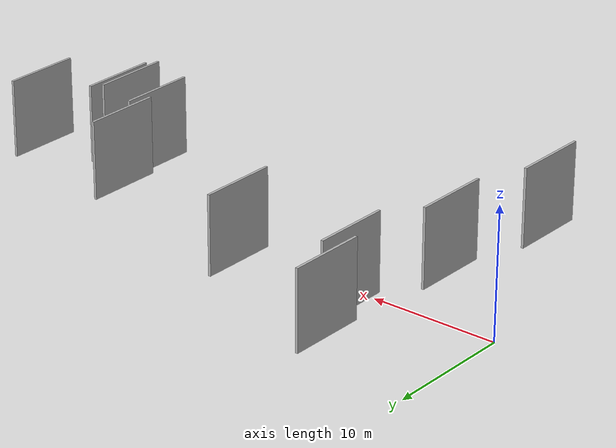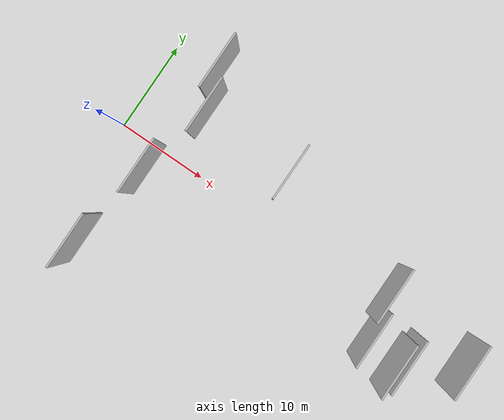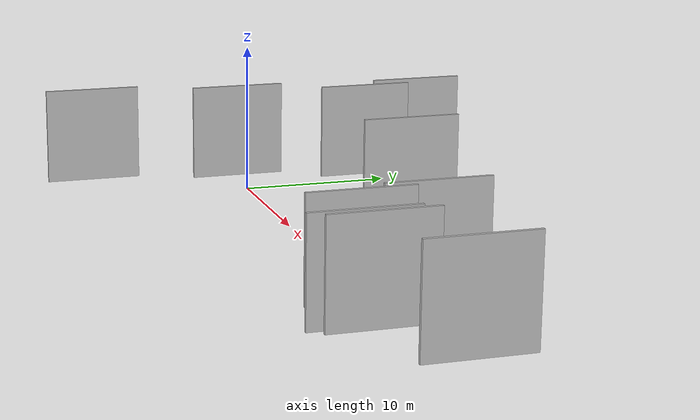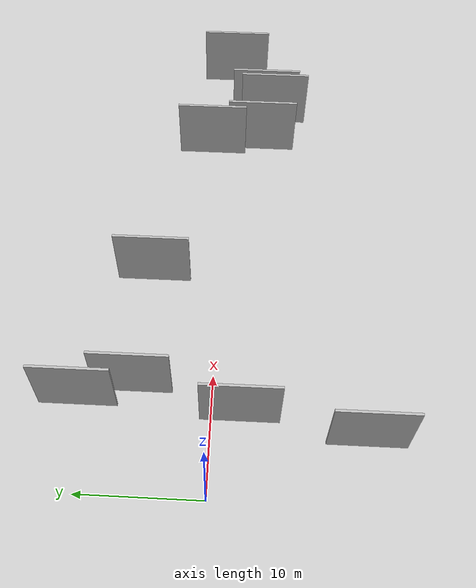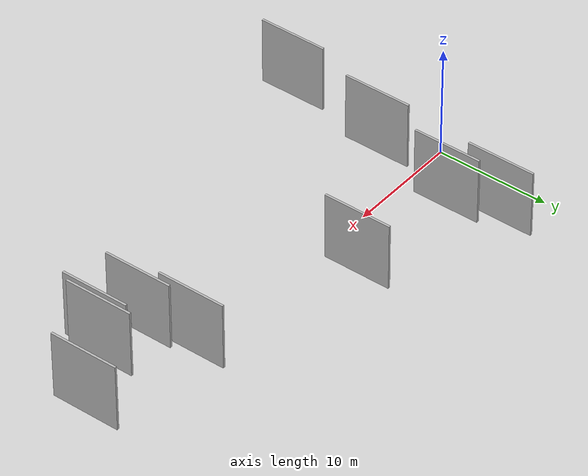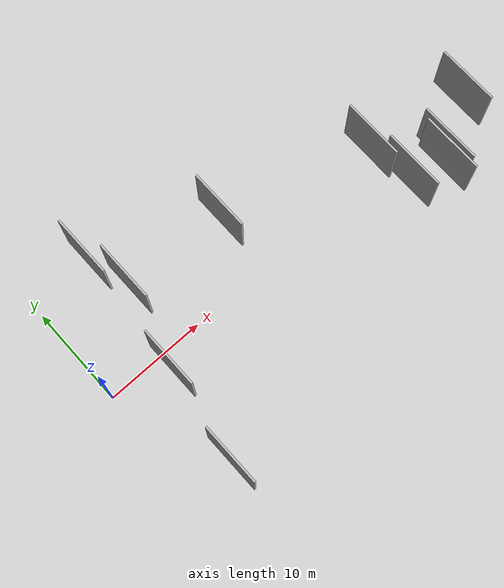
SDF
<sdf version="1.6">
 <world name="default">
  <scene>
   <sky><clouds><speed>12</speed></clouds></sky>
   <ambient>0.4 0.4 0.4 1</ambient>
   <background>0.7 0.7 0.7 1</background>
   <shadows>1</shadows>
  </scene>
  <gravity>0 0 -9.8066</gravity>
  <magnetic_field>6e-06 2.3e-05 -4.2e-05</magnetic_field>
  <physics default="0" name="default_physics" type="ode">
   <ode>
    <solver>
     <type>quick</type>
     <iters>10</iters>
     <sor>1.0</sor>
     <use_dynamic_moi_rescaling>0</use_dynamic_moi_rescaling>
    </solver>
    <constraints>
     <cfm>0</cfm>
     <erp>0.2</erp>
     <contact_max_correcting_vel>100</contact_max_correcting_vel>
     <contact_surface_layer>0.001</contact_surface_layer>
    </constraints>
   </ode>
   <max_step_size>0.004</max_step_size>
   <real_time_factor>1</real_time_factor>
   <real_time_update_rate>250</real_time_update_rate>
  </physics>
  <light name="sun" type="directional">
   <pose>0 0 10 0 0 0</pose>
   <diffuse>0.8 0.8 0.8 1</diffuse>
   <specular>0.2 0.2 0.2 1</specular>
   <attenuation>
    <range>1000</range>
    <constant>0.9</constant>
    <linear>0.01</linear>
    <quadratic>0.001</quadratic>
   </attenuation>
   <direction>-0.5 0.1 -0.9</direction>
  </light>
  <model name="grey_wall_1">
   <static>1</static>
   <pose>31.9623 1.1963 2.5 0.000000 0.000000 1.570796</pose>
   <link name="link">
    <pose>0 0 3.00 0 0 0</pose>
    <collision name="collision"><geometry><box><size>6.00 0.2 6.00</size></box></geometry></collision>
    <visual name="visual">
     <cast_shadows>0</cast_shadows>
     <geometry><box><size>6.00 0.2 6.00</size></box></geometry>
     <material>
      <script>
       <uri>model://HANNAS_wall/materials/scripts</uri>
       <uri>model://HANNAS_wall/materials/textures</uri>
       <name>vrc/HANNAS_wall</name>
      </script>
     </material>
    </visual>
   </link>
  </model>
  <model name="grey_wall_2">
   <static>1</static>
   <pose>36.1941 -4.3274 2.5 0.000000 0.000000 1.570796</pose>
   <link name="link">
    <pose>0 0 3.00 0 0 0</pose>
    <collision name="collision"><geometry><box><size>6.00 0.2 6.00</size></box></geometry></collision>
    <visual name="visual">
     <cast_shadows>0</cast_shadows>
     <geometry><box><size>6.00 0.2 6.00</size></box></geometry>
     <material>
      <script>
       <uri>model://HANNAS_wall/materials/scripts</uri>
       <uri>model://HANNAS_wall/materials/textures</uri>
       <name>vrc/HANNAS_wall</name>
      </script>
     </material>
    </visual>
   </link>
  </model>
  <model name="grey_wall_3">
   <static>1</static>
   <pose>32.6400 -3.2439 2.5 0.000000 0.000000 1.570796</pose>
   <link name="link">
    <pose>0 0 3.00 0 0 0</pose>
    <collision name="collision"><geometry><box><size>6.00 0.2 6.00</size></box></geometry></collision>
    <visual name="visual">
     <cast_shadows>0</cast_shadows>
     <geometry><box><size>6.00 0.2 6.00</size></box></geometry>
     <material>
      <script>
       <uri>model://HANNAS_wall/materials/scripts</uri>
       <uri>model://HANNAS_wall/materials/textures</uri>
       <name>vrc/HANNAS_wall</name>
      </script>
     </material>
    </visual>
   </link>
  </model>
  <model name="grey_wall_4">
   <static>1</static>
   <pose>6.1502 10.0293 2.5 0.000000 0.000000 1.570796</pose>
   <link name="link">
    <pose>0 0 3.00 0 0 0</pose>
    <collision name="collision"><geometry><box><size>6.00 0.2 6.00</size></box></geometry></collision>
    <visual name="visual">
     <cast_shadows>0</cast_shadows>
     <geometry><box><size>6.00 0.2 6.00</size></box></geometry>
     <material>
      <script>
       <uri>model://HANNAS_wall/materials/scripts</uri>
       <uri>model://HANNAS_wall/materials/textures</uri>
       <name>vrc/HANNAS_wall</name>
      </script>
     </material>
    </visual>
   </link>
  </model>
  <model name="grey_wall_5">
   <static>1</static>
   <pose>7.4186 5.9627 2.5 0.000000 0.000000 1.570796</pose>
   <link name="link">
    <pose>0 0 3.00 0 0 0</pose>
    <collision name="collision"><geometry><box><size>6.00 0.2 6.00</size></box></geometry></collision>
    <visual name="visual">
     <cast_shadows>0</cast_shadows>
     <geometry><box><size>6.00 0.2 6.00</size></box></geometry>
     <material>
      <script>
       <uri>model://HANNAS_wall/materials/scripts</uri>
       <uri>model://HANNAS_wall/materials/textures</uri>
       <name>vrc/HANNAS_wall</name>
      </script>
     </material>
    </visual>
   </link>
  </model>
  <model name="grey_wall_6">
   <static>1</static>
   <pose>36.7246 -3.5247 2.5 0.000000 0.000000 1.570796</pose>
   <link name="link">
    <pose>0 0 3.00 0 0 0</pose>
    <collision name="collision"><geometry><box><size>6.00 0.2 6.00</size></box></geometry></collision>
    <visual name="visual">
     <cast_shadows>0</cast_shadows>
     <geometry><box><size>6.00 0.2 6.00</size></box></geometry>
     <material>
      <script>
       <uri>model://HANNAS_wall/materials/scripts</uri>
       <uri>model://HANNAS_wall/materials/textures</uri>
       <name>vrc/HANNAS_wall</name>
      </script>
     </material>
    </visual>
   </link>
  </model>
  <model name="grey_wall_7">
   <static>1</static>
   <pose>3.9098 -11.6059 2.5 0.000000 0.000000 1.570796</pose>
   <link name="link">
    <pose>0 0 3.00 0 0 0</pose>
    <collision name="collision"><geometry><box><size>6.00 0.2 6.00</size></box></geometry></collision>
    <visual name="visual">
     <cast_shadows>0</cast_shadows>
     <geometry><box><size>6.00 0.2 6.00</size></box></geometry>
     <material>
      <script>
       <uri>model://HANNAS_wall/materials/scripts</uri>
       <uri>model://HANNAS_wall/materials/textures</uri>
       <name>vrc/HANNAS_wall</name>
      </script>
     </material>
    </visual>
   </link>
  </model>
  <model name="grey_wall_8">
   <static>1</static>
   <pose>17.5767 5.2910 2.5 0.000000 0.000000 1.570796</pose>
   <link name="link">
    <pose>0 0 3.00 0 0 0</pose>
    <collision name="collision"><geometry><box><size>6.00 0.2 6.00</size></box></geometry></collision>
    <visual name="visual">
     <cast_shadows>0</cast_shadows>
     <geometry><box><size>6.00 0.2 6.00</size></box></geometry>
     <material>
      <script>
       <uri>model://HANNAS_wall/materials/scripts</uri>
       <uri>model://HANNAS_wall/materials/textures</uri>
       <name>vrc/HANNAS_wall</name>
      </script>
     </material>
    </visual>
   </link>
  </model>
  <model name="grey_wall_9">
   <static>1</static>
   <pose>41.7601 -0.6323 2.5 0.000000 0.000000 1.570796</pose>
   <link name="link">
    <pose>0 0 3.00 0 0 0</pose>
    <collision name="collision"><geometry><box><size>6.00 0.2 6.00</size></box></geometry></collision>
    <visual name="visual">
     <cast_shadows>0</cast_shadows>
     <geometry><box><size>6.00 0.2 6.00</size></box></geometry>
     <material>
      <script>
       <uri>model://HANNAS_wall/materials/scripts</uri>
       <uri>model://HANNAS_wall/materials/textures</uri>
       <name>vrc/HANNAS_wall</name>
      </script>
     </material>
    </visual>
   </link>
  </model>
  <model name="grey_wall_10">
   <static>1</static>
   <pose>5.3969 -2.2136 2.5 0.000000 0.000000 1.570796</pose>
   <link name="link">
    <pose>0 0 3.00 0 0 0</pose>
    <collision name="collision"><geometry><box><size>6.00 0.2 6.00</size></box></geometry></collision>
    <visual name="visual">
     <cast_shadows>0</cast_shadows>
     <geometry><box><size>6.00 0.2 6.00</size></box></geometry>
     <material>
      <script>
       <uri>model://HANNAS_wall/materials/scripts</uri>
       <uri>model://HANNAS_wall/materials/textures</uri>
       <name>vrc/HANNAS_wall</name>
      </script>
     </material>
    </visual>
   </link>
  </model>
 </world>
</sdf>
